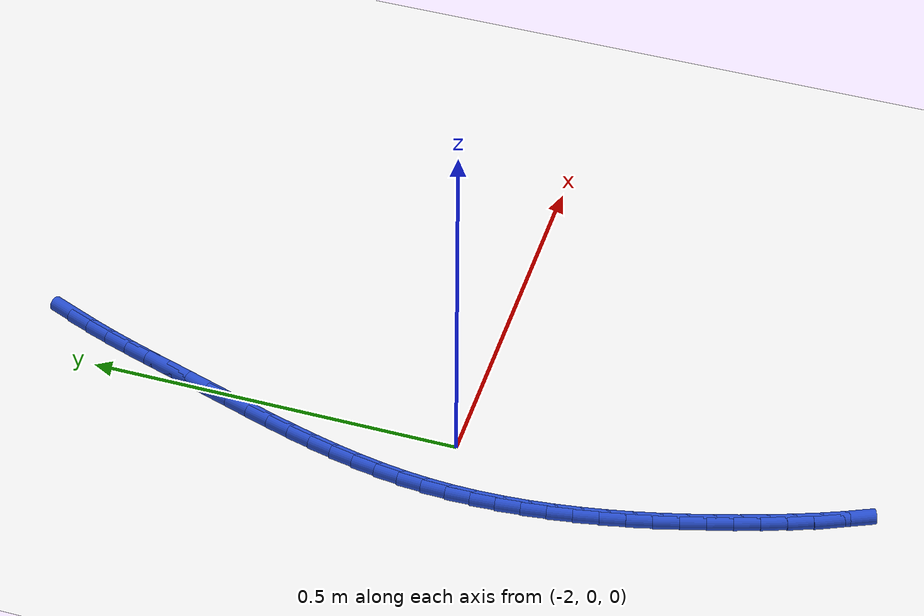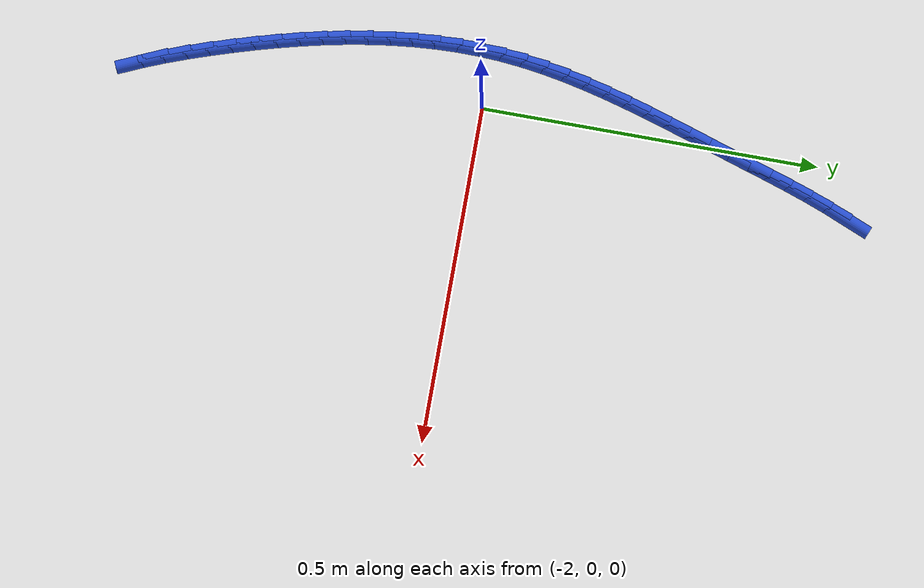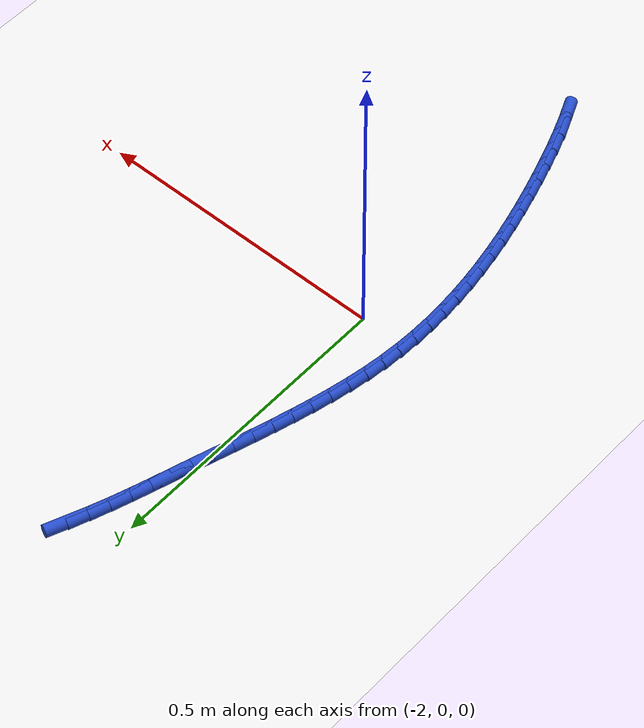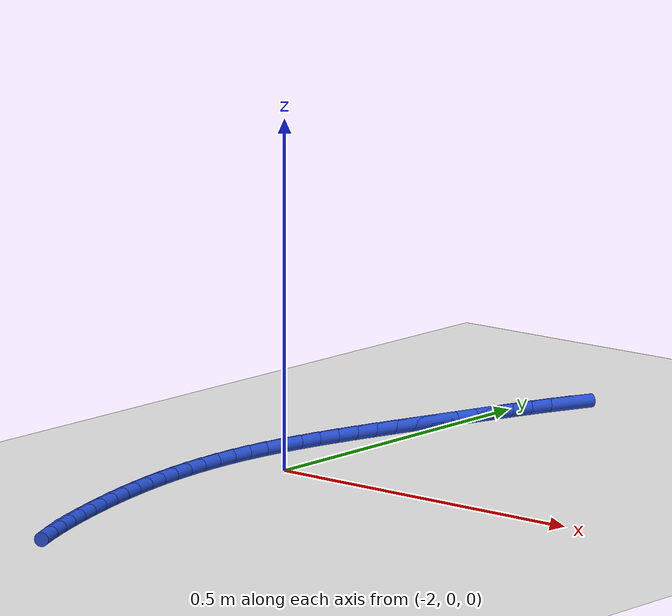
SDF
<sdf version="1.6">
 <world name="default">
  <model name="ground_plane">
   <static>1</static>
   <link name="link">
    <collision name="collision">
     <geometry><plane><normal>0 0 1</normal><size>100 100</size></plane></geometry>
     <surface><friction><ode><mu>100</mu><mu2>50</mu2></ode></friction></surface>
    </collision>
    <visual name="visual">
     <cast_shadows>0</cast_shadows>
     <geometry><plane><normal>0 0 1</normal><size>100 100</size></plane></geometry>
     <material>
      <script><uri>file://media/materials/scripts/gazebo.material</uri><name>Gazebo/WhiteGlow</name></script>
     </material>
    </visual>
   </link>
  </model>
  <model name="line">
   <link name="link_82">
    <pose>-1.9316610406418926 0.5521219738529916 0.01 0 1.57 1.1835099261082387</pose>
    <collision name="collision">
     <geometry><cylinder><radius>0.01</radius><length>0.08</length></cylinder></geometry>
    </collision>
    <visual name="visual">
     <material>
      <script><name>Gazebo/Blue</name><uri>file://media/materials/scripts/gazebo.material</uri></script>
     </material>
     <geometry><cylinder><radius>0.01</radius><length>0.08</length></cylinder></geometry>
    </visual>
   </link>
   <link name="link_83">
    <pose>-1.9440835651586097 0.5216661252007291 0.01 0 1.57 1.2161279952487354</pose>
    <collision name="collision">
     <geometry><cylinder><radius>0.01</radius><length>0.08</length></cylinder></geometry>
    </collision>
    <visual name="visual">
     <material>
      <script><name>Gazebo/Blue</name><uri>file://media/materials/scripts/gazebo.material</uri></script>
     </material>
     <geometry><cylinder><radius>0.01</radius><length>0.08</length></cylinder></geometry>
    </visual>
   </link>
   <link name="link_84">
    <pose>-1.9555769918036443 0.490630316987984 0.01 0 1.57 1.2406873834366459</pose>
    <collision name="collision">
     <geometry><cylinder><radius>0.01</radius><length>0.08</length></cylinder></geometry>
    </collision>
    <visual name="visual">
     <material>
      <script><name>Gazebo/Blue</name><uri>file://media/materials/scripts/gazebo.material</uri></script>
     </material>
     <geometry><cylinder><radius>0.01</radius><length>0.08</length></cylinder></geometry>
    </visual>
   </link>
   <link name="link_85">
    <pose>-1.9663626961293637 0.45915268254071046 0.01 0 1.57 1.2574063004087286</pose>
    <collision name="collision">
     <geometry><cylinder><radius>0.01</radius><length>0.08</length></cylinder></geometry>
    </collision>
    <visual name="visual">
     <material>
      <script><name>Gazebo/Blue</name><uri>file://media/materials/scripts/gazebo.material</uri></script>
     </material>
     <geometry><cylinder><radius>0.01</radius><length>0.08</length></cylinder></geometry>
    </visual>
   </link>
   <link name="link_86">
    <pose>-1.9766620536881347 0.4273713551848641 0.01 0 1.57 1.266458199751806</pose>
    <collision name="collision">
     <geometry><cylinder><radius>0.01</radius><length>0.08</length></cylinder></geometry>
    </collision>
    <visual name="visual">
     <material>
      <script><name>Gazebo/Blue</name><uri>file://media/materials/scripts/gazebo.material</uri></script>
     </material>
     <geometry><cylinder><radius>0.01</radius><length>0.08</length></cylinder></geometry>
    </visual>
   </link>
   <link name="link_87">
    <pose>-1.9866964400323266 0.39542446824639993 0.01 0 1.57 1.267947531310145</pose>
    <collision name="collision">
     <geometry><cylinder><radius>0.01</radius><length>0.08</length></cylinder></geometry>
    </collision>
    <visual name="visual">
     <material>
      <script><name>Gazebo/Blue</name><uri>file://media/materials/scripts/gazebo.material</uri></script>
     </material>
     <geometry><cylinder><radius>0.01</radius><length>0.08</length></cylinder></geometry>
    </visual>
   </link>
   <link name="link_88">
    <pose>-1.9966871567807376 0.3634501233549485 0.01 0 1.57 1.2646057293177932</pose>
    <collision name="collision">
     <geometry><cylinder><radius>0.01</radius><length>0.08</length></cylinder></geometry>
    </collision>
    <visual name="visual">
     <material>
      <script><name>Gazebo/Blue</name><uri>file://media/materials/scripts/gazebo.material</uri></script>
     </material>
     <geometry><cylinder><radius>0.01</radius><length>0.08</length></cylinder></geometry>
    </visual>
   </link>
   <link name="link_89">
    <pose>-2.0067716654321917 0.3315504787419894 0.01 0 1.57 1.264344626389801</pose>
    <collision name="collision">
     <geometry><cylinder><radius>0.01</radius><length>0.08</length></cylinder></geometry>
    </collision>
    <visual name="visual">
     <material>
      <script><name>Gazebo/Blue</name><uri>file://media/materials/scripts/gazebo.material</uri></script>
     </material>
     <geometry><cylinder><radius>0.01</radius><length>0.08</length></cylinder></geometry>
    </visual>
   </link>
   <link name="link_90">
    <pose>-2.0168425881286964 0.2997227266813274 0.01 0 1.57 1.2686293407355234</pose>
    <collision name="collision">
     <geometry><cylinder><radius>0.01</radius><length>0.08</length></cylinder></geometry>
    </collision>
    <visual name="visual">
     <material>
      <script><name>Gazebo/Blue</name><uri>file://media/materials/scripts/gazebo.material</uri></script>
     </material>
     <geometry><cylinder><radius>0.01</radius><length>0.08</length></cylinder></geometry>
    </visual>
   </link>
   <link name="link_91">
    <pose>-2.0267480924902146 0.2679450011893852 0.01 0 1.57 1.277508999520714</pose>
    <collision name="collision">
     <geometry><cylinder><radius>0.01</radius><length>0.08</length></cylinder></geometry>
    </collision>
    <visual name="visual">
     <material>
      <script><name>Gazebo/Blue</name><uri>file://media/materials/scripts/gazebo.material</uri></script>
     </material>
     <geometry><cylinder><radius>0.01</radius><length>0.08</length></cylinder></geometry>
    </visual>
   </link>
   <link name="link_92">
    <pose>-2.03633634613671 0.23619543628258557 0.01 0 1.57 1.2910507718315896</pose>
    <collision name="collision">
     <geometry><cylinder><radius>0.01</radius><length>0.08</length></cylinder></geometry>
    </collision>
    <visual name="visual">
     <material>
      <script><name>Gazebo/Blue</name><uri>file://media/materials/scripts/gazebo.material</uri></script>
     </material>
     <geometry><cylinder><radius>0.01</radius><length>0.08</length></cylinder></geometry>
    </visual>
   </link>
   <link name="link_93">
    <pose>-2.0454555166881474 0.20445216597735144 0.01 0 1.57 1.309334843725281</pose>
    <collision name="collision">
     <geometry><cylinder><radius>0.01</radius><length>0.08</length></cylinder></geometry>
    </collision>
    <visual name="visual">
     <material>
      <script><name>Gazebo/Blue</name><uri>file://media/materials/scripts/gazebo.material</uri></script>
     </material>
     <geometry><cylinder><radius>0.01</radius><length>0.08</length></cylinder></geometry>
    </visual>
   </link>
   <link name="link_94">
    <pose>-2.0539537717644873 0.17269332429010512 0.01 0 1.57 1.3324460302773518</pose>
    <collision name="collision">
     <geometry><cylinder><radius>0.01</radius><length>0.08</length></cylinder></geometry>
    </collision>
    <visual name="visual">
     <material>
      <script><name>Gazebo/Blue</name><uri>file://media/materials/scripts/gazebo.material</uri></script>
     </material>
     <geometry><cylinder><radius>0.01</radius><length>0.08</length></cylinder></geometry>
    </visual>
   </link>
   <link name="link_95">
    <pose>-2.0616792789856944 0.1408970452372695 0.01 0 1.57 1.360461535157798</pose>
    <collision name="collision">
     <geometry><cylinder><radius>0.01</radius><length>0.08</length></cylinder></geometry>
    </collision>
    <visual name="visual">
     <material>
      <script><name>Gazebo/Blue</name><uri>file://media/materials/scripts/gazebo.material</uri></script>
     </material>
     <geometry><cylinder><radius>0.01</radius><length>0.08</length></cylinder></geometry>
    </visual>
   </link>
   <link name="link_96">
    <pose>-2.0684802059717313 0.10904146283526764 0.01 0 1.57 1.3934344474105078</pose>
    <collision name="collision">
     <geometry><cylinder><radius>0.01</radius><length>0.08</length></cylinder></geometry>
    </collision>
    <visual name="visual">
     <material>
      <script><name>Gazebo/Blue</name><uri>file://media/materials/scripts/gazebo.material</uri></script>
     </material>
     <geometry><cylinder><radius>0.01</radius><length>0.08</length></cylinder></geometry>
    </visual>
   </link>
   <link name="link_97">
    <pose>-2.0742047203425606 0.07710471110052147 0.01 0 1.57 1.4313728851951526</pose>
    <collision name="collision">
     <geometry><cylinder><radius>0.01</radius><length>0.08</length></cylinder></geometry>
    </collision>
    <visual name="visual">
     <material>
      <script><name>Gazebo/Blue</name><uri>file://media/materials/scripts/gazebo.material</uri></script>
     </material>
     <geometry><cylinder><radius>0.01</radius><length>0.08</length></cylinder></geometry>
    </visual>
   </link>
   <link name="link_98">
    <pose>-2.078700989718147 0.04506492404945405 0.01 0 1.57 1.474205362688449</pose>
    <collision name="collision">
     <geometry><cylinder><radius>0.01</radius><length>0.08</length></cylinder></geometry>
    </collision>
    <visual name="visual">
     <material>
      <script><name>Gazebo/Blue</name><uri>file://media/materials/scripts/gazebo.material</uri></script>
     </material>
     <geometry><cylinder><radius>0.01</radius><length>0.08</length></cylinder></geometry>
    </visual>
   </link>
   <link name="link_99">
    <pose>-2.0818174999358363 0.012900300176456183 0.01 0 1.57 1.5197555299562733</pose>
    <collision name="collision">
     <geometry><cylinder><radius>0.01</radius><length>0.08</length></cylinder></geometry>
    </collision>
    <visual name="visual">
     <material>
      <script><name>Gazebo/Blue</name><uri>file://media/materials/scripts/gazebo.material</uri></script>
     </material>
     <geometry><cylinder><radius>0.01</radius><length>0.08</length></cylinder></geometry>
    </visual>
   </link>
   <link name="link_100">
    <pose>-2.0834674562274587 -0.019397848425436917 0.01 0 1.57 1.5634014985128257</pose>
    <collision name="collision">
     <geometry><cylinder><radius>0.01</radius><length>0.08</length></cylinder></geometry>
    </collision>
    <visual name="visual">
     <material>
      <script><name>Gazebo/Blue</name><uri>file://media/materials/scripts/gazebo.material</uri></script>
     </material>
     <geometry><cylinder><radius>0.01</radius><length>0.08</length></cylinder></geometry>
    </visual>
   </link>
   <link name="link_101">
    <pose>-2.083707137122106 -0.051809219809189656 0.01 0 1.57 -1.5371122428202424</pose>
    <collision name="collision">
     <geometry><cylinder><radius>0.01</radius><length>0.08</length></cylinder></geometry>
    </collision>
    <visual name="visual">
     <material>
      <script><name>Gazebo/Blue</name><uri>file://media/materials/scripts/gazebo.material</uri></script>
     </material>
     <geometry><cylinder><radius>0.01</radius><length>0.08</length></cylinder></geometry>
    </visual>
   </link>
   <link name="link_102">
    <pose>-2.0826119763228683 -0.08430963076055507 0.01 0 1.57 -1.498618857155371</pose>
    <collision name="collision">
     <geometry><cylinder><radius>0.01</radius><length>0.08</length></cylinder></geometry>
    </collision>
    <visual name="visual">
     <material>
      <script><name>Gazebo/Blue</name><uri>file://media/materials/scripts/gazebo.material</uri></script>
     </material>
     <geometry><cylinder><radius>0.01</radius><length>0.08</length></cylinder></geometry>
    </visual>
   </link>
   <link name="link_103">
    <pose>-2.0802574075328337 -0.11687489806528613 0.01 0 1.57 -1.4626949019836744</pose>
    <collision name="collision">
     <geometry><cylinder><radius>0.01</radius><length>0.08</length></cylinder></geometry>
    </collision>
    <visual name="visual">
     <material>
      <script><name>Gazebo/Blue</name><uri>file://media/materials/scripts/gazebo.material</uri></script>
     </material>
     <geometry><cylinder><radius>0.01</radius><length>0.08</length></cylinder></geometry>
    </visual>
   </link>
   <link name="link_104">
    <pose>-2.07671886445509 -0.14948083850913577 0.01 0 1.57 -1.4292977404098137</pose>
    <collision name="collision">
     <geometry><cylinder><radius>0.01</radius><length>0.08</length></cylinder></geometry>
    </collision>
    <visual name="visual">
     <material>
      <script><name>Gazebo/Blue</name><uri>file://media/materials/scripts/gazebo.material</uri></script>
     </material>
     <geometry><cylinder><radius>0.01</radius><length>0.08</length></cylinder></geometry>
    </visual>
   </link>
   <link name="link_105">
    <pose>-2.072071780792727 -0.18210326887785694 0.01 0 1.57 -1.3983655797395735</pose>
    <collision name="collision">
     <geometry><cylinder><radius>0.01</radius><length>0.08</length></cylinder></geometry>
    </collision>
    <visual name="visual">
     <material>
      <script><name>Gazebo/Blue</name><uri>file://media/materials/scripts/gazebo.material</uri></script>
     </material>
     <geometry><cylinder><radius>0.01</radius><length>0.08</length></cylinder></geometry>
    </visual>
   </link>
   <link name="link_106">
    <pose>-2.066391590248834 -0.21471800595720278 0.01 0 1.57 -1.3698239595125188</pose>
    <collision name="collision">
     <geometry><cylinder><radius>0.01</radius><length>0.08</length></cylinder></geometry>
    </collision>
    <visual name="visual">
     <material>
      <script><name>Gazebo/Blue</name><uri>file://media/materials/scripts/gazebo.material</uri></script>
     </material>
     <geometry><cylinder><radius>0.01</radius><length>0.08</length></cylinder></geometry>
    </visual>
   </link>
   <link name="link_107">
    <pose>-2.0597537265265 -0.24730086653292613 0.01 0 1.57 -1.3435912473898985</pose>
    <collision name="collision">
     <geometry><cylinder><radius>0.01</radius><length>0.08</length></cylinder></geometry>
    </collision>
    <visual name="visual">
     <material>
      <script><name>Gazebo/Blue</name><uri>file://media/materials/scripts/gazebo.material</uri></script>
     </material>
     <geometry><cylinder><radius>0.01</radius><length>0.08</length></cylinder></geometry>
    </visual>
   </link>
   <link name="link_108">
    <pose>-2.0522336233288123 -0.27982766739077997 0.01 0 1.57 -1.3195831606119004</pose>
    <collision name="collision">
     <geometry><cylinder><radius>0.01</radius><length>0.08</length></cylinder></geometry>
    </collision>
    <visual name="visual">
     <material>
      <script><name>Gazebo/Blue</name><uri>file://media/materials/scripts/gazebo.material</uri></script>
     </material>
     <geometry><cylinder><radius>0.01</radius><length>0.08</length></cylinder></geometry>
    </visual>
   </link>
   <link name="link_109">
    <pose>-2.043906714358861 -0.3122742253165173 0.01 0 1.57 -1.2977164009083118</pose>
    <collision name="collision">
     <geometry><cylinder><radius>0.01</radius><length>0.08</length></cylinder></geometry>
    </collision>
    <visual name="visual">
     <material>
      <script><name>Gazebo/Blue</name><uri>file://media/materials/scripts/gazebo.material</uri></script>
     </material>
     <geometry><cylinder><radius>0.01</radius><length>0.08</length></cylinder></geometry>
    </visual>
   </link>
   <link name="link_110">
    <pose>-2.0348484333197345 -0.3446163570958911 0.01 0 1.57 -1.2779115276517776</pose>
    <collision name="collision">
     <geometry><cylinder><radius>0.01</radius><length>0.08</length></cylinder></geometry>
    </collision>
    <visual name="visual">
     <material>
      <script><name>Gazebo/Blue</name><uri>file://media/materials/scripts/gazebo.material</uri></script>
     </material>
     <geometry><cylinder><radius>0.01</radius><length>0.08</length></cylinder></geometry>
    </visual>
   </link>
   <link name="link_111">
    <pose>-2.025134213914521 -0.3768298795146543 0.01 0 1.57 -1.2600058772512182</pose>
    <collision name="collision">
     <geometry><cylinder><radius>0.01</radius><length>0.08</length></cylinder></geometry>
    </collision>
    <visual name="visual">
     <material>
      <script><name>Gazebo/Blue</name><uri>file://media/materials/scripts/gazebo.material</uri></script>
     </material>
     <geometry><cylinder><radius>0.01</radius><length>0.08</length></cylinder></geometry>
    </visual>
   </link>
   <link name="link_112">
    <pose>-2.014836815159114 -0.40888910034594866 0.01 0 1.57 -1.2408905973421582</pose>
    <collision name="collision">
     <geometry><cylinder><radius>0.01</radius><length>0.08</length></cylinder></geometry>
    </collision>
    <visual name="visual">
     <material>
      <script><name>Gazebo/Blue</name><uri>file://media/materials/scripts/gazebo.material</uri></script>
     </material>
     <geometry><cylinder><radius>0.01</radius><length>0.08</length></cylinder></geometry>
    </visual>
   </link>
   <link name="link_113">
    <pose>-2.0039382716913994 -0.4407171422259629 0.01 0 1.57 -1.2167216922478532</pose>
    <collision name="collision">
     <geometry><cylinder><radius>0.01</radius><length>0.08</length></cylinder></geometry>
    </collision>
    <visual name="visual">
     <material>
      <script><name>Gazebo/Blue</name><uri>file://media/materials/scripts/gazebo.material</uri></script>
     </material>
     <geometry><cylinder><radius>0.01</radius><length>0.08</length></cylinder></geometry>
    </visual>
   </link>
   <link name="link_114">
    <pose>-1.9923099051030846 -0.47217466539041103 0.01 0 1.57 -1.1870613241400851</pose>
    <collision name="collision">
     <geometry><cylinder><radius>0.01</radius><length>0.08</length></cylinder></geometry>
    </collision>
    <visual name="visual">
     <material>
      <script><name>Gazebo/Blue</name><uri>file://media/materials/scripts/gazebo.material</uri></script>
     </material>
     <geometry><cylinder><radius>0.01</radius><length>0.08</length></cylinder></geometry>
    </visual>
   </link>
   <link name="link_115">
    <pose>-1.9798163148137893 -0.5031185375408902 0.01 0 1.57 -1.1516546310471683</pose>
    <collision name="collision">
     <geometry><cylinder><radius>0.01</radius><length>0.08</length></cylinder></geometry>
    </collision>
    <visual name="visual">
     <material>
      <script><name>Gazebo/Blue</name><uri>file://media/materials/scripts/gazebo.material</uri></script>
     </material>
     <geometry><cylinder><radius>0.01</radius><length>0.08</length></cylinder></geometry>
    </visual>
   </link>
  </model>
 </world>
</sdf>
